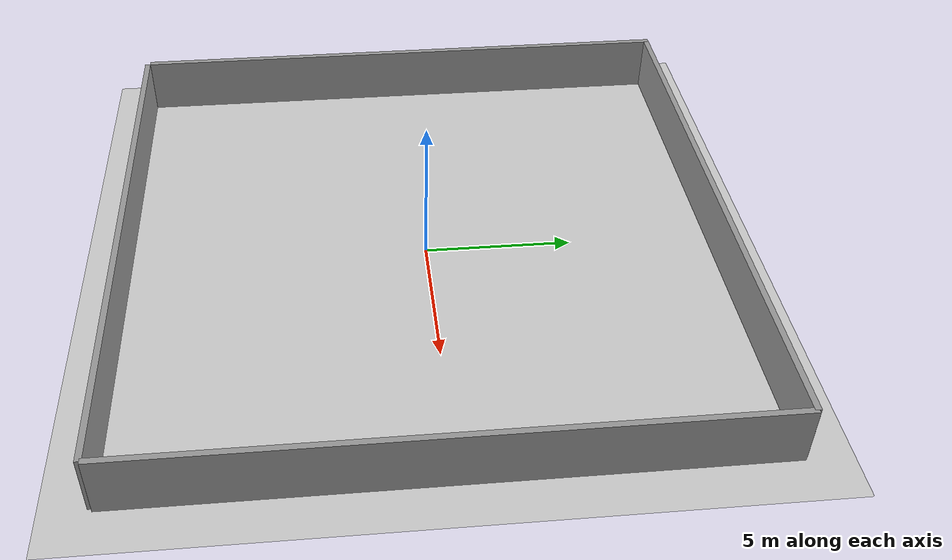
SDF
<sdf version="1.4">
 <world name="default">
  <light name="sun" type="directional">
   <pose>0 0 10 0 -0 0</pose>
   <diffuse>0.8 0.8 0.8 1</diffuse>
   <specular>0.2 0.2 0.2 1</specular>
   <attenuation>
    <range>1000</range>
    <constant>0.9</constant>
    <linear>0.01</linear>
    <quadratic>0.001</quadratic>
   </attenuation>
   <direction>-0.5 0.1 -0.9</direction>
  </light>
  <model name="ground_plane">
   <static>1</static>
   <link name="link">
    <collision name="collision">
     <geometry><plane><normal>0 0 1</normal><size>100 100</size></plane></geometry>
     <surface><friction><ode><mu>100</mu><mu2>50</mu2></ode></friction></surface>
    </collision>
    <visual name="visual">
     <cast_shadows>0</cast_shadows>
     <geometry><plane><normal>0 0 1</normal><size>100 100</size></plane></geometry>
     <material>
      <script><uri>file://media/materials/scripts/gazebo.material</uri><name>Gazebo/Grey</name></script>
     </material>
    </visual>
    <velocity_decay><linear>0</linear><angular>0</angular></velocity_decay>
   </link>
  </model>
  <physics type="ode">
   <max_step_size>0.001</max_step_size>
   <real_time_factor>1</real_time_factor>
   <real_time_update_rate>1000</real_time_update_rate>
   <gravity>0 0 -9.8</gravity>
  </physics>
  <scene><ambient>0.4 0.4 0.4 1</ambient><background>0.7 0.7 0.7 1</background><shadows>1</shadows></scene>
  <model name="wall_1_model">
   <pose>0.030413 9.89028 1 0 -0 0</pose>
   <link name="link">
    <collision name="collision"><geometry><box><size>20 0.2 2</size></box></geometry></collision>
    <visual name="visual">
     <geometry><box><size>20 0.2 2</size></box></geometry>
     <material>
      <script><uri>file://media/materials/scripts/gazebo.material</uri><name>Gazebo/Grey</name></script>
     </material>
    </visual>
    <velocity_decay><linear>0</linear><angular>0</angular></velocity_decay>
   </link>
   <static>1</static>
  </model>
  <model name="wall_2_model">
   <pose>0.042642 -10.1135 1 0 -0 0</pose>
   <link name="link">
    <collision name="collision"><geometry><box><size>20 0.2 2</size></box></geometry></collision>
    <visual name="visual">
     <geometry><box><size>20 0.2 2</size></box></geometry>
     <material>
      <script><uri>file://media/materials/scripts/gazebo.material</uri><name>Gazebo/Grey</name></script>
     </material>
    </visual>
    <velocity_decay><linear>0</linear><angular>0</angular></velocity_decay>
   </link>
   <static>1</static>
  </model>
  <model name="wall_3_model">
   <pose>10.0321 -0.079508 1 0 -0 0</pose>
   <link name="link">
    <collision name="collision"><geometry><box><size>0.2 20 2</size></box></geometry></collision>
    <visual name="visual">
     <geometry><box><size>0.2 20 2</size></box></geometry>
     <material>
      <script><uri>file://media/materials/scripts/gazebo.material</uri><name>Gazebo/Grey</name></script>
     </material>
    </visual>
    <velocity_decay><linear>0</linear><angular>0</angular></velocity_decay>
   </link>
   <static>1</static>
  </model>
  <model name="wall_4_model">
   <pose>-10.0294 -0.019264 1 0 -0 0</pose>
   <link name="link">
    <collision name="collision"><geometry><box><size>0.2 20 2</size></box></geometry></collision>
    <visual name="visual">
     <geometry><box><size>0.2 20 2</size></box></geometry>
     <material>
      <script><uri>file://media/materials/scripts/gazebo.material</uri><name>Gazebo/Grey</name></script>
     </material>
    </visual>
    <velocity_decay><linear>0</linear><angular>0</angular></velocity_decay>
   </link>
   <static>1</static>
  </model>
 </world>
</sdf>
